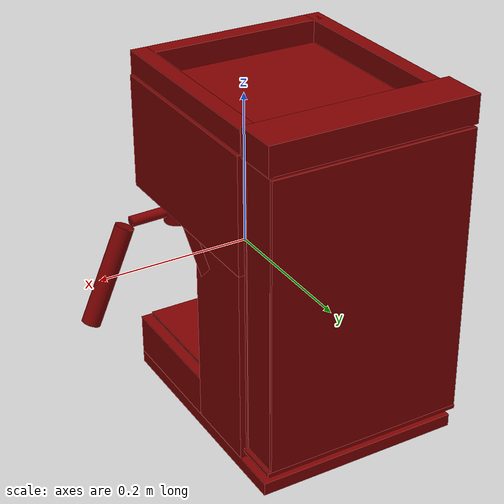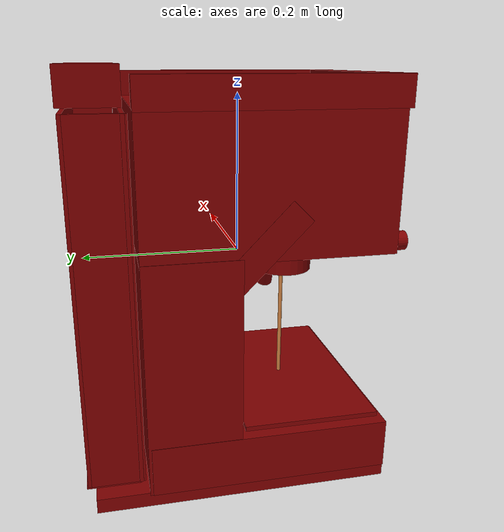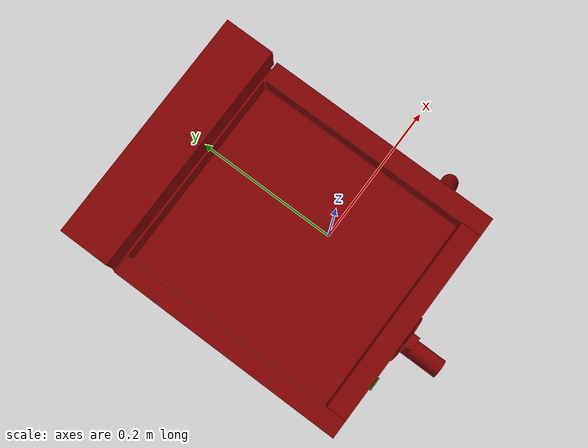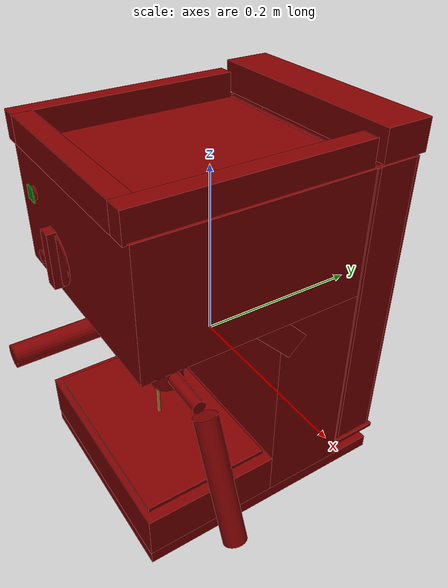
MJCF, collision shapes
<?xml version='1.0' encoding='UTF-8'?>
<mujoco model="model">
  <compiler angle="radian"/>
  <asset>
    <mesh file="visuals/Body001.obj" name="Body001_vis"/>
    <mesh file="visuals/Button001.obj" name="Button001_vis"/>
    <mesh file="visuals/Button002.obj" name="Button002_vis"/>
    <mesh file="visuals/Container001_Clear.obj" name="Container001_Clear_vis"/>
    <mesh file="visuals/Lever001.obj" name="Lever001_vis"/>
    <mesh file="visuals/Lever002.obj" name="Lever002_vis"/>
    <mesh file="visuals/Lid001.obj" name="Lid001_vis"/>
    <mesh file="visuals/Lid002.obj" name="Lid002_vis"/>
    <texture file="visuals/T_BC001.png" name="Body001_material" type="2d"/>
    <material name="Body001_material" rgba="1 1 1 1.0" texture="Body001_material" shininess="0.44142138957977295" specular="0.7"/>
    <texture file="visuals/T_BC001.png" name="Button001_material" type="2d"/>
    <material name="Button001_material" rgba="1 1 1 1.0" texture="Button001_material" shininess="0.44142138957977295" specular="0.7"/>
    <texture file="visuals/T_BC001.png" name="Button002_material" type="2d"/>
    <material name="Button002_material" rgba="1 1 1 1.0" texture="Button002_material" shininess="0.44142138957977295" specular="0.3103448502657381"/>
    <texture file="visuals/T_BC001.png" name="Container001_Clear_material" type="2d"/>
    <material name="Container001_Clear_material" rgba="1 1 1 0.1499999761581421" texture="Container001_Clear_material" shininess="0.44142138957977295" specular="0.7"/>
    <texture file="visuals/T_BC001.png" name="Lid001_material" type="2d"/>
    <material name="Lid001_material" rgba="1 1 1 1.0" texture="Lid001_material" shininess="0.44142138957977295" specular="0.7"/>
    <texture file="visuals/T_BC001.png" name="Lever001_material" type="2d"/>
    <material name="Lever001_material" rgba="1 1 1 1.0" texture="Lever001_material" shininess="0.44142138957977295" specular="0.7"/>
    <texture file="visuals/T_BC001.png" name="Lever002_material" type="2d"/>
    <material name="Lever002_material" rgba="1 1 1 1.0" texture="Lever002_material" shininess="0.44142138957977295" specular="0.7"/>
    <texture file="visuals/T_BC001.png" name="Lid002_material" type="2d"/>
    <material name="Lid002_material" rgba="1 1 1 1.0" texture="Lid002_material" shininess="0.44142138957977295" specular="0.7"/>
  </asset>
  <default>
    <default class="visual">
      <geom conaffinity="0" contype="0" group="1" type="mesh"/>
    </default>
    <default class="collision">
      <geom group="0" rgba="0.5 0 0 0.5"/>
    </default>
    <default class="spawn">
      <geom group="0" rgba="1 1 1 0.5" contype="0" conaffinity="0"/>
      <site group="0" rgba="1 1 1 0.5"/>
    </default>
    <default class="region">
      <geom group="1" conaffinity="0" contype="0" rgba="0 1 0 0"/>
    </default>
  </default>
  <worldbody>
    <body>
      <body name="object">
        <geom class="collision" type="box" pos="-0.12143441289663315 -0.14328321814537048 0.15694311261177063" size="0.00803837738931179 0.0006876495899632573 0.008038374595344067" quat="1.0 0.0 0.0 0.0" name="start_button" rgba="0.0 0.5 0 0.5"/>
        <site type="cylinder" rgba="0.8 0.5 0.25 1" size="0.0023784779477864504 0.09367246925830841" pos="-0.05366102233529091 -0.045187003910541534 -0.09689296782016754" name="coffee_liquid"/>
        <site rgba="0 0 0 0" size="0.009999999776482582 0.009999999776482582" pos="-0.052851706743240356 -0.04545111209154129 -0.14597952365875244" name="receptacle_place_site"/>
        <geom mesh="Body001_vis" type="mesh" solimp="0.998 0.998 0.001" solref="0.001 1" density="100" friction="0.95 0.3 0.1" class="visual" material="Body001_material"/>
        <geom class="collision" type="box" pos="-0.05128897354006767 0.003578033298254013 0.11859221756458282" size="0.13825365900993347 0.1354549676179886 0.07621660828590393" quat="1.0 0.0 0.0 0.0"/>
        <geom class="collision" type="box" pos="-0.05182139202952385 0.0866452157497406 -0.0868796706199646" size="0.13878598809242249 0.05238640680909157 0.1335023194551468" quat="1.0 0.0 0.0 0.0"/>
        <geom class="collision" type="box" pos="-0.05220256373286247 -0.00040775537490844727 -0.19123850762844086" size="0.13916714489459991 0.13593752682209015 0.02914159558713436" quat="1.0 0.0 0.0 0.0"/>
        <geom class="collision" type="box" pos="-0.05132600665092468 0.030494006350636482 -0.22640080749988556" size="0.1382906585931778 0.1668391227722168 0.008609332144260406" quat="1.0 0.0 0.0 0.0"/>
        <geom class="collision" type="box" pos="-0.18019871413707733 0.0013520102947950363 0.20878008008003235" size="0.010527551174163818 0.13768035173416138 0.01642097719013691" quat="1.0 0.0 0.0 0.0"/>
        <geom class="collision" type="box" pos="0.07216416299343109 0.0013520102947950363 0.20878008008003235" size="0.011025418527424335 0.13768020272254944 0.016420956701040268" quat="1.0 0.0 0.0 0.0"/>
        <geom class="collision" type="box" pos="-0.056332048028707504 -0.12462934851646423 0.20878008008003235" size="0.12495683133602142 0.0116971330717206 0.016420936211943626" quat="1.0 0.0 0.0 0.0"/>
        <geom class="collision" type="box" pos="-0.058926817029714584 -0.15082167088985443 0.11285083740949631" size="0.008104880340397358 0.005095086991786957 0.03212641552090645" quat="1.0 0.0 0.0 0.0"/>
        <geom class="collision" type="cylinder" pos="-0.05809084326028824 -0.14634007215499878 0.11303188651800156" size="0.03036811202764511 0.0009479046566411853" quat="2.2197249904820637e-07 2.219724422047875e-07 0.70710688829422 -0.7071066498756409"/>
        <geom class="collision" type="box" pos="-0.05137062445282936 0.015029005706310272 0.04995649680495262" size="0.13833525776863098 0.06107624992728233 0.015564004890620708" quat="0.9211006164550781 -0.3893246352672577 0.0 0.0"/>
        <body name="Button001">
          <joint axis="0.0 1.0 0.0" pos="-0.12136699259281158 -0.13811074197292328 0.15687152743339539" limited="true" name="Button001_joint" range="0.0 0.003" type="slide" damping="1" frictionloss="1" armature=".01" stiffness="0.05"/>
          <geom mesh="Button001_vis" type="mesh" solimp="0.998 0.998 0.001" solref="0.001 1" density="100" friction="0.95 0.3 0.1" class="visual" material="Button001_material"/>
          <geom class="collision" type="cylinder" pos="-0.12143441289663315 -0.14069552719593048 0.15694311261177063" size="0.008038373664021492 0.0014995381934568286" quat="0.7071067094802856 0.70710688829422 0.0 0.0"/>
        </body>
        <body name="Button002">
          <joint axis="0.0 1.0 0.0" pos="-0.12146639078855515 -0.13811074197292328 0.07945156842470169" limited="true" name="Button002_joint" range="0.0 0.003" type="slide" damping="1" frictionloss="1" armature=".01" stiffness="0.05"/>
          <geom mesh="Button002_vis" type="mesh" solimp="0.998 0.998 0.001" solref="0.001 1" density="100" friction="0.95 0.3 0.1" class="visual" material="Button002_material"/>
          <geom class="collision" type="cylinder" pos="-0.12143441289663315 -0.14023607969284058 0.07952316850423813" size="0.008038373664021492 0.0031053691636770964" quat="0.7071067094802856 0.70710688829422 0.0 0.0"/>
        </body>
        <body name="Container001_Clear">
          <joint axis="0.0 0.0 1.0" pos="-0.05241011083126068 0.17557086050510406 -0.006903290748596191" limited="true" name="Container001_Clear_joint" range="0.0 0.1" type="slide" damping="1" frictionloss="1" armature=".01" stiffness="0.05"/>
          <geom mesh="Container001_Clear_vis" type="mesh" solimp="0.998 0.998 0.001" solref="0.001 1" density="100" friction="0.95 0.3 0.1" class="visual" material="Container001_Clear_material"/>
          <geom class="collision" type="box" pos="-0.05424389988183975 0.20272958278656006 -0.00412701815366745" size="0.13601773977279663 0.002185351215302944 0.19573470950126648" quat="1.0 0.0 0.0 0.0"/>
          <geom class="collision" type="box" pos="-0.18741537630558014 0.17213626205921173 -0.00412701815366745" size="0.0030049297492951155 0.029051324352622032 0.195734441280365" quat="1.0 0.0 0.0 0.0"/>
          <geom class="collision" type="box" pos="-0.05425778403878212 0.1476791352033615 -0.00412701815366745" size="0.137038454413414 0.002185347257182002 0.1957341730594635" quat="1.0 0.0 0.0 0.0"/>
          <geom class="collision" type="box" pos="0.07909245789051056 0.1757754236459732 -0.00412701815366745" size="0.0030049216002225876 0.025412095710635185 0.1957339197397232" quat="1.0 0.0 0.0 0.0"/>
          <geom class="collision" type="box" pos="-0.05449484661221504 0.17504443228244781 -0.18429507315158844" size="0.13136057555675507 0.02765423059463501 0.001603817450813949" quat="1.0 0.0 0.0 0.0"/>
          <geom class="collision" type="box" pos="-0.05158191919326782 0.17675016820430756 -0.1990775465965271" size="0.1383405327796936 0.02940446138381958 0.0028263863641768694" quat="1.0 0.0 0.0 0.0"/>
          <body name="Lid001">
            <joint axis="0.0 0.0 1.0" pos="-0.05240893363952637 0.17621268332004547 0.2154211550951004" limited="true" name="Lid001_joint" range="0.0 0.1" type="slide" damping="1" frictionloss="1" armature=".01" stiffness="0.05"/>
            <geom mesh="Lid001_vis" type="mesh" solimp="0.998 0.998 0.001" solref="0.001 1" density="100" friction="0.95 0.3 0.1" class="visual" material="Lid001_material"/>
            <geom class="collision" type="box" pos="-0.05158191919326782 0.17675016820430756 0.21536481380462646" size="0.13834044337272644 0.02940443716943264 0.01865020953118801" quat="1.0 0.0 0.0 0.0"/>
          </body>
        </body>
        <body name="Lever001">
          <joint axis="0.0 0.0 -1.0" pos="0.04953619837760925 -0.08707579970359802 0.023726804181933403" limited="true" name="Lever001_joint" range="0.0 1.5707963267948966" type="hinge" damping="1" frictionloss="1" armature=".01" stiffness="1"/>
          <geom mesh="Lever001_vis" type="mesh" solimp="0.998 0.998 0.001" solref="0.001 1" density="100" friction="0.95 0.3 0.1" class="visual" material="Lever001_material"/>
          <geom class="collision" type="cylinder" pos="0.05183969438076019 -0.08652041852474213 0.01970934495329857" size="0.01745925471186638 0.01745925471186638" quat="1.0 0.0 0.0 0.0"/>
          <geom class="collision" type="cylinder" pos="0.09344378113746643 -0.08731243759393692 0.017509700730443" size="0.007178662344813347 0.023798631504178047" quat="0.695843517780304 -0.002868357812985778 0.7181298732757568 -0.009114954620599747"/>
          <geom class="collision" type="cylinder" pos="0.15346810221672058 -0.08652041852474213 -0.050517648458480835" size="0.01265932247042656 0.06940647959709167" quat="0.20290347933769226 0.0 0.9791987538337708 0.0"/>
        </body>
        <body name="Lever002">
          <joint axis="0.0 0.0 -1.0" pos="-0.05368614196777344 -0.04599396139383316 0.013270503841340542" limited="true" name="Lever002_joint" range="0.0 1.5707963267948966" type="hinge" damping="1" frictionloss="1" armature=".01" stiffness="1"/>
          <geom mesh="Lever002_vis" type="mesh" solimp="0.998 0.998 0.001" solref="0.001 1" density="100" friction="0.95 0.3 0.1" class="visual" material="Lever002_material"/>
          <geom class="collision" type="cylinder" pos="-0.053682174533605576 -0.04720313102006912 0.004127215594053268" size="0.03433306887745857 0.014941037632524967" quat="1.0 0.0 0.0 0.0"/>
          <geom class="collision" type="cylinder" pos="-0.05369919538497925 -0.14269693195819855 0.01468366477638483" size="0.012662953697144985 0.06772185117006302" quat="0.7071067094802856 0.70710688829422 0.0 0.0"/>
          <geom class="collision" type="cylinder" pos="-0.053682174533605576 -0.04576332867145538 0.02786855958402157" size="0.04622286558151245 0.010303272865712643" quat="1.0 0.0 0.0 0.0"/>
        </body>
        <body name="Lid002">
          <joint axis="0.0 0.0 1.0" pos="-0.05226554349064827 -0.048804912716150284 -0.1580992043018341" limited="true" name="Lid002_joint" range="0.0 0.1" type="slide" damping="1" frictionloss="1" armature=".01" stiffness="0.05"/>
          <geom mesh="Lid002_vis" type="mesh" solimp="0.998 0.998 0.001" solref="0.001 1" density="100" friction="0.95 0.3 0.1" class="visual" material="Lid002_material"/>
          <geom class="collision" type="box" pos="-0.05244824290275574 -0.050701871514320374 -0.15802647173404694" size="0.12642619013786316 0.07911462336778641 0.0027298396453261375" quat="1.0 0.0 0.0 0.0"/>
        </body>
        <geom class="region" name="reg_main" type="box" pos="-0.052203889936208725 0.03544319421052933 0.0" size="0.13916853070259094 0.17196416854858398 0.23501011729240417"/>
      </body>
    </body>
  </worldbody>
  <actuator>
    <motor name="Button001_joint_actuator" joint="Button001_joint" gear="0.5"/>
    <motor name="Button002_joint_actuator" joint="Button002_joint" gear="0.5"/>
    <motor name="Container001_Clear_joint_actuator" joint="Container001_Clear_joint" gear="10"/>
    <motor name="Lever001_joint_actuator" joint="Lever001_joint" gear="10"/>
    <motor name="Lever002_joint_actuator" joint="Lever002_joint" gear="10"/>
    <motor name="Lid002_joint_actuator" joint="Lid002_joint" gear="10"/>
    <motor name="Lid001_joint_actuator" joint="Lid001_joint" gear="10"/>
  </actuator>
</mujoco>
